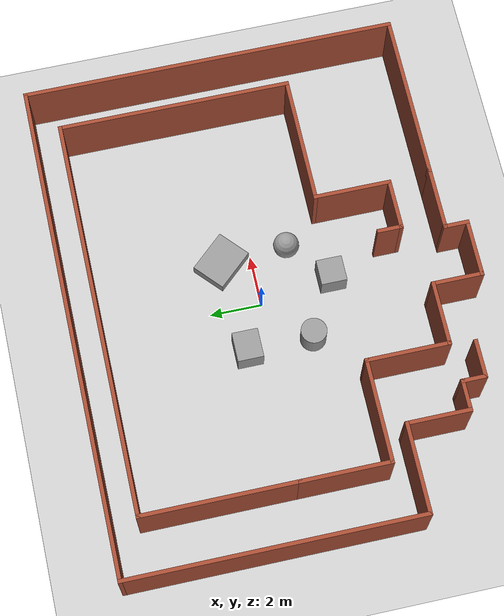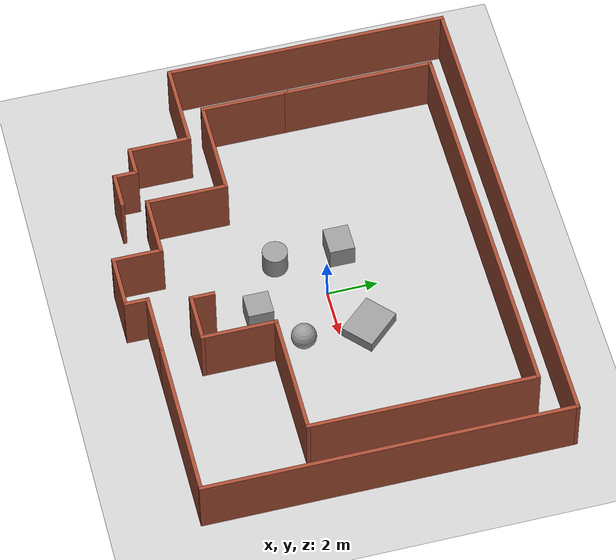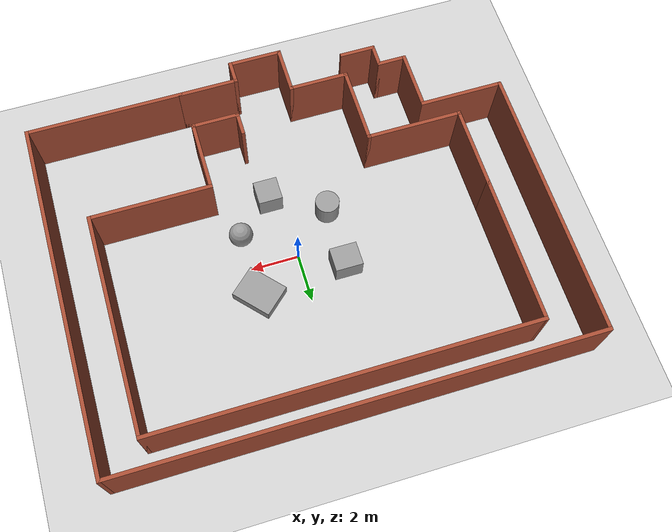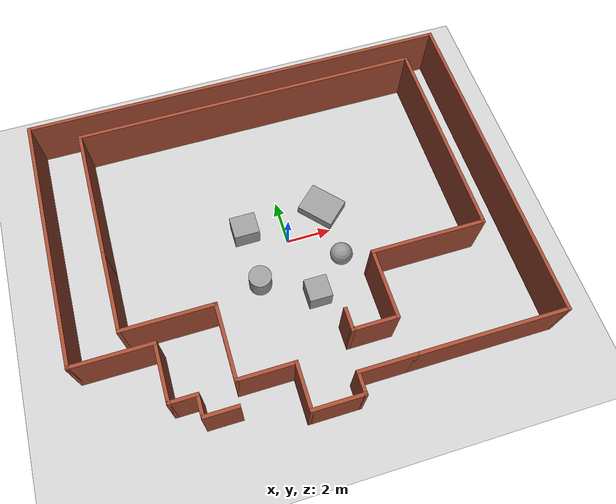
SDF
<sdf version="1.7">
 <world name="default">
  <light name="sun" type="directional">
   <pose>0 0 10 0 -0 0</pose>
   <diffuse>0.8 0.8 0.8 1</diffuse>
   <specular>0.2 0.2 0.2 1</specular>
   <attenuation>
    <range>1000</range>
    <constant>0.9</constant>
    <linear>0.01</linear>
    <quadratic>0.001</quadratic>
   </attenuation>
   <direction>-0.5 0.1 -0.9</direction>
   <spot><inner_angle>0</inner_angle><outer_angle>0</outer_angle><falloff>0</falloff></spot>
  </light>
  <model name="ground_plane">
   <static>1</static>
   <link name="link">
    <collision name="collision">
     <geometry><plane><normal>0 0 1</normal><size>100 100</size></plane></geometry>
     <surface>
      <contact><collide_bitmask>65535</collide_bitmask></contact>
      <friction><ode><mu>100</mu><mu2>50</mu2></ode></friction>
     </surface>
    </collision>
    <visual name="visual">
     <cast_shadows>0</cast_shadows>
     <geometry><plane><normal>0 0 1</normal><size>100 100</size></plane></geometry>
     <material>
      <script><uri>file://media/materials/scripts/gazebo.material</uri><name>Gazebo/Grey</name></script>
     </material>
    </visual>
   </link>
  </model>
  <gravity>0 0 -9.8</gravity>
  <magnetic_field>6e-06 2.3e-05 -4.2e-05</magnetic_field>
  <atmosphere type="adiabatic"/>
  <physics type="ode">
   <max_step_size>0.001</max_step_size>
   <real_time_factor>1</real_time_factor>
   <real_time_update_rate>1000</real_time_update_rate>
  </physics>
  <scene><ambient>0.4 0.4 0.4 1</ambient><background>0.7 0.7 0.7 1</background><shadows>1</shadows></scene>
  <spherical_coordinates>
   <surface_model>EARTH_WGS84</surface_model>
   <latitude_deg>0</latitude_deg>
   <longitude_deg>0</longitude_deg>
   <elevation>0</elevation>
   <heading_deg>0</heading_deg>
  </spherical_coordinates>
  <model name="Untitled">
   <pose>-0.285121 -0.377202 0.458181 0 -0 0</pose>
   <link name="Wall_0">
    <collision name="Wall_0_Collision">
     <geometry><box><size>3.5 0.15 2.5</size></box></geometry>
     <pose>0 0 1.25 0 -0 0</pose>
    </collision>
    <visual name="Wall_0_Visual">
     <pose>0 0 1.25 0 -0 0</pose>
     <geometry><box><size>3.5 0.15 2.5</size></box></geometry>
     <material>
      <script><uri>file://media/materials/scripts/gazebo.material</uri><name>Gazebo/Bricks</name></script>
      <ambient>1 1 1 1</ambient>
     </material>
     <meta><layer>0</layer></meta>
    </visual>
    <pose>-7.45 -0.975 0 0 -0 -1.5708</pose>
   </link>
   <link name="Wall_10">
    <collision name="Wall_10_Collision">
     <geometry><box><size>15.5 0.15 2.5</size></box></geometry>
     <pose>0 0 1.25 0 -0 0</pose>
    </collision>
    <visual name="Wall_10_Visual">
     <pose>0 0 1.25 0 -0 0</pose>
     <geometry><box><size>15.5 0.15 2.5</size></box></geometry>
     <material>
      <script><uri>file://media/materials/scripts/gazebo.material</uri><name>Gazebo/Bricks</name></script>
      <ambient>1 1 1 1</ambient>
     </material>
     <meta><layer>0</layer></meta>
    </visual>
    <pose>0.225 6.55 0 0 -0 0</pose>
   </link>
   <link name="Wall_11">
    <collision name="Wall_11_Collision">
     <geometry><box><size>9 0.15 2.5</size></box></geometry>
     <pose>0 0 1.25 0 -0 0</pose>
    </collision>
    <visual name="Wall_11_Visual">
     <pose>0 0 1.25 0 -0 0</pose>
     <geometry><box><size>9 0.15 2.5</size></box></geometry>
     <material>
      <script><uri>file://media/materials/scripts/gazebo.material</uri><name>Gazebo/Bricks</name></script>
      <ambient>1 1 1 1</ambient>
     </material>
     <meta><layer>0</layer></meta>
    </visual>
    <pose>7.9 2.125 0 0 -0 -1.5708</pose>
   </link>
   <link name="Wall_12">
    <collision name="Wall_12_Collision">
     <geometry><box><size>5 0.15 2.5</size></box></geometry>
     <pose>0 0 1.25 0 -0 0</pose>
    </collision>
    <visual name="Wall_12_Visual">
     <pose>0 0 1.25 0 -0 0</pose>
     <geometry><box><size>5 0.15 2.5</size></box></geometry>
     <material>
      <script><uri>file://media/materials/scripts/gazebo.material</uri><name>Gazebo/Bricks</name></script>
      <ambient>1 1 1 1</ambient>
     </material>
     <meta><layer>0</layer></meta>
    </visual>
    <pose>5.475 -2.3 0 0 -0 3.14159</pose>
   </link>
   <link name="Wall_13">
    <collision name="Wall_13_Collision">
     <geometry><box><size>3 0.15 2.5</size></box></geometry>
     <pose>0 0 1.25 0 -0 0</pose>
    </collision>
    <visual name="Wall_13_Visual">
     <pose>0 0 1.25 0 -0 0</pose>
     <geometry><box><size>3 0.15 2.5</size></box></geometry>
     <material>
      <script><uri>file://media/materials/scripts/gazebo.material</uri><name>Gazebo/Bricks</name></script>
      <ambient>1 1 1 1</ambient>
     </material>
     <meta><layer>0</layer></meta>
    </visual>
    <pose>3.05 -3.725 0 0 -0 -1.5708</pose>
   </link>
   <link name="Wall_14">
    <collision name="Wall_14_Collision">
     <geometry><box><size>2 0.15 2.5</size></box></geometry>
     <pose>0 0 1.25 0 -0 0</pose>
    </collision>
    <visual name="Wall_14_Visual">
     <pose>0 0 1.25 0 -0 0</pose>
     <geometry><box><size>2 0.15 2.5</size></box></geometry>
     <material>
      <script><uri>file://media/materials/scripts/gazebo.material</uri><name>Gazebo/Bricks</name></script>
      <ambient>1 1 1 1</ambient>
     </material>
     <meta><layer>0</layer></meta>
    </visual>
    <pose>2.125 -5.15 0 0 -0 3.14159</pose>
   </link>
   <link name="Wall_15">
    <collision name="Wall_15_Collision">
     <geometry><box><size>1 0.15 2.5</size></box></geometry>
     <pose>0 0 1.25 0 -0 0</pose>
    </collision>
    <visual name="Wall_15_Visual">
     <pose>0 0 1.25 0 -0 0</pose>
     <geometry><box><size>1 0.15 2.5</size></box></geometry>
     <material>
      <script><uri>file://media/materials/scripts/gazebo.material</uri><name>Gazebo/Bricks</name></script>
      <ambient>1 1 1 1</ambient>
     </material>
     <meta><layer>0</layer></meta>
    </visual>
    <pose>1.2 -4.725 0 0 -0 1.5708</pose>
   </link>
   <link name="Wall_17">
    <collision name="Wall_17_Collision">
     <geometry><box><size>4 0.15 2.5</size></box></geometry>
     <pose>0 0 1.25 0 -0 0</pose>
    </collision>
    <visual name="Wall_17_Visual">
     <pose>0 0 1.25 0 -0 0</pose>
     <geometry><box><size>4 0.15 2.5</size></box></geometry>
     <material>
      <script><uri>file://media/materials/scripts/gazebo.material</uri><name>Gazebo/Bricks</name></script>
      <ambient>1 1 1 1</ambient>
     </material>
     <meta><layer>0</layer></meta>
    </visual>
    <pose>-5.525 -2.65 0 0 -0 0</pose>
   </link>
   <link name="Wall_18">
    <collision name="Wall_18_Collision">
     <geometry><box><size>3.25 0.15 2.5</size></box></geometry>
     <pose>0 0 1.25 0 -0 0</pose>
    </collision>
    <visual name="Wall_18_Visual">
     <pose>0 0 1.25 0 -0 0</pose>
     <geometry><box><size>3.25 0.15 2.5</size></box></geometry>
     <material>
      <script><uri>file://media/materials/scripts/gazebo.material</uri><name>Gazebo/Bricks</name></script>
      <ambient>1 1 1 1</ambient>
     </material>
     <meta><layer>0</layer></meta>
    </visual>
    <pose>-3.6 -4.2 0 0 -0 -1.5708</pose>
   </link>
   <link name="Wall_19">
    <collision name="Wall_19_Collision">
     <geometry><box><size>2.5 0.15 2.5</size></box></geometry>
     <pose>0 0 1.25 0 -0 0</pose>
    </collision>
    <visual name="Wall_19_Visual">
     <pose>0 0 1.25 0 -0 0</pose>
     <geometry><box><size>2.5 0.15 2.5</size></box></geometry>
     <material>
      <script><uri>file://media/materials/scripts/gazebo.material</uri><name>Gazebo/Bricks</name></script>
      <ambient>1 1 1 1</ambient>
     </material>
     <meta><layer>0</layer></meta>
    </visual>
    <pose>-2.425 -5.75 0 0 -0 0</pose>
   </link>
   <link name="Wall_20">
    <collision name="Wall_20_Collision">
     <geometry><box><size>2 0.15 2.5</size></box></geometry>
     <pose>0 0 1.25 0 -0 0</pose>
    </collision>
    <visual name="Wall_20_Visual">
     <pose>0 0 1.25 0 -0 0</pose>
     <geometry><box><size>2 0.15 2.5</size></box></geometry>
     <material>
      <script><uri>file://media/materials/scripts/gazebo.material</uri><name>Gazebo/Bricks</name></script>
      <ambient>1 1 1 1</ambient>
     </material>
     <meta><layer>0</layer></meta>
    </visual>
    <pose>-1.25 -6.675 0 0 -0 -1.5708</pose>
   </link>
   <link name="Wall_21">
    <collision name="Wall_21_Collision">
     <geometry><box><size>2.25 0.15 2.5</size></box></geometry>
     <pose>0 0 1.25 0 -0 0</pose>
    </collision>
    <visual name="Wall_21_Visual">
     <pose>0 0 1.25 0 -0 0</pose>
     <geometry><box><size>2.25 0.15 2.5</size></box></geometry>
     <material>
      <script><uri>file://media/materials/scripts/gazebo.material</uri><name>Gazebo/Bricks</name></script>
      <ambient>1 1 1 1</ambient>
     </material>
     <meta><layer>0</layer></meta>
    </visual>
    <pose>-0.2 -7.6 0 0 -0 0</pose>
   </link>
   <link name="Wall_22">
    <collision name="Wall_22_Collision">
     <geometry><box><size>1 0.15 2.5</size></box></geometry>
     <pose>0 0 1.25 0 -0 0</pose>
    </collision>
    <visual name="Wall_22_Visual">
     <pose>0 0 1.25 0 -0 0</pose>
     <geometry><box><size>1 0.15 2.5</size></box></geometry>
     <material>
      <script><uri>file://media/materials/scripts/gazebo.material</uri><name>Gazebo/Bricks</name></script>
      <ambient>1 1 1 1</ambient>
     </material>
     <meta><layer>0</layer></meta>
    </visual>
    <pose>0.85 -7.175 0 0 -0 1.5708</pose>
   </link>
   <link name="Wall_23">
    <collision name="Wall_23_Collision">
     <geometry><box><size>2.5 0.15 2.5</size></box></geometry>
     <pose>0 0 1.25 0 -0 0</pose>
    </collision>
    <visual name="Wall_23_Visual">
     <pose>0 0 1.25 0 -0 0</pose>
     <geometry><box><size>2.5 0.15 2.5</size></box></geometry>
     <material>
      <script><uri>file://media/materials/scripts/gazebo.material</uri><name>Gazebo/Bricks</name></script>
      <ambient>1 1 1 1</ambient>
     </material>
     <meta><layer>0</layer></meta>
    </visual>
    <pose>2.025 -6.75 0 0 -0 0</pose>
   </link>
   <link name="Wall_24">
    <collision name="Wall_24_Collision">
     <geometry><box><size>6.5 0.15 2.5</size></box></geometry>
     <pose>0 0 1.25 0 -0 0</pose>
    </collision>
    <visual name="Wall_24_Visual">
     <pose>0 0 1.25 0 -0 0</pose>
     <geometry><box><size>6.5 0.15 2.5</size></box></geometry>
     <material>
      <script><uri>file://media/materials/scripts/gazebo.material</uri><name>Gazebo/Bricks</name></script>
      <ambient>1 1 1 1</ambient>
     </material>
     <meta><layer>0</layer></meta>
    </visual>
    <pose>6.375 -6.75 0 0 -0 0</pose>
   </link>
   <link name="Wall_25">
    <collision name="Wall_25_Collision">
     <geometry><box><size>14.5 0.15 2.5</size></box></geometry>
     <pose>0 0 1.25 0 -0 0</pose>
    </collision>
    <visual name="Wall_25_Visual">
     <pose>0 0 1.25 0 -0 0</pose>
     <geometry><box><size>14.5 0.15 2.5</size></box></geometry>
     <material>
      <script><uri>file://media/materials/scripts/gazebo.material</uri><name>Gazebo/Bricks</name></script>
      <ambient>1 1 1 1</ambient>
     </material>
     <meta><layer>0</layer></meta>
    </visual>
    <pose>9.55 0.424999 0 0 -0 1.5708</pose>
   </link>
   <link name="Wall_26">
    <collision name="Wall_26_Collision">
     <geometry><box><size>19.25 0.15 2.5</size></box></geometry>
     <pose>0 0 1.25 0 -0 0</pose>
    </collision>
    <visual name="Wall_26_Visual">
     <pose>0 0 1.25 0 -0 0</pose>
     <geometry><box><size>19.25 0.15 2.5</size></box></geometry>
     <material>
      <script><uri>file://media/materials/scripts/gazebo.material</uri><name>Gazebo/Bricks</name></script>
      <ambient>1 1 1 1</ambient>
     </material>
     <meta><layer>0</layer></meta>
    </visual>
    <pose>0 7.6 0 0 -0 3.14159</pose>
   </link>
   <link name="Wall_27">
    <collision name="Wall_27_Collision">
     <geometry><box><size>11.25 0.15 2.5</size></box></geometry>
     <pose>0 0 1.25 0 -0 0</pose>
    </collision>
    <visual name="Wall_27_Visual">
     <pose>0 0 1.25 0 -0 0</pose>
     <geometry><box><size>11.25 0.15 2.5</size></box></geometry>
     <material>
      <script><uri>file://media/materials/scripts/gazebo.material</uri><name>Gazebo/Bricks</name></script>
      <ambient>1 1 1 1</ambient>
     </material>
     <meta><layer>0</layer></meta>
    </visual>
    <pose>-9.55 2.05 0 0 -0 -1.5708</pose>
   </link>
   <link name="Wall_28">
    <collision name="Wall_28_Collision">
     <geometry><box><size>3.5 0.15 2.5</size></box></geometry>
     <pose>0 0 1.25 0 -0 0</pose>
    </collision>
    <visual name="Wall_28_Visual">
     <pose>0 0 1.25 0 -0 0</pose>
     <geometry><box><size>3.5 0.15 2.5</size></box></geometry>
     <material>
      <script><uri>file://media/materials/scripts/gazebo.material</uri><name>Gazebo/Bricks</name></script>
      <ambient>1 1 1 1</ambient>
     </material>
     <meta><layer>0</layer></meta>
    </visual>
    <pose>-7.875 -3.5 0 0 -0 0</pose>
   </link>
   <link name="Wall_29">
    <collision name="Wall_29_Collision">
     <geometry><box><size>2.5 0.15 2.5</size></box></geometry>
     <pose>0 0 1.25 0 -0 0</pose>
    </collision>
    <visual name="Wall_29_Visual">
     <pose>0 0 1.25 0 -0 0</pose>
     <geometry><box><size>2.5 0.15 2.5</size></box></geometry>
     <material>
      <script><uri>file://media/materials/scripts/gazebo.material</uri><name>Gazebo/Bricks</name></script>
      <ambient>1 1 1 1</ambient>
     </material>
     <meta><layer>0</layer></meta>
    </visual>
    <pose>-6.2 -4.675 0 0 -0 -1.5708</pose>
   </link>
   <link name="Wall_30">
    <collision name="Wall_30_Collision">
     <geometry><box><size>1.25 0.15 2.5</size></box></geometry>
     <pose>0 0 1.25 0 -0 0</pose>
    </collision>
    <visual name="Wall_30_Visual">
     <pose>0 0 1.25 0 -0 0</pose>
     <geometry><box><size>1.25 0.15 2.5</size></box></geometry>
     <material>
      <script><uri>file://media/materials/scripts/gazebo.material</uri><name>Gazebo/Bricks</name></script>
      <ambient>1 1 1 1</ambient>
     </material>
     <meta><layer>0</layer></meta>
    </visual>
    <pose>-5.65 -5.85 0 0 -0 0</pose>
   </link>
   <link name="Wall_31">
    <collision name="Wall_31_Collision">
     <geometry><box><size>1 0.15 2.5</size></box></geometry>
     <pose>0 0 1.25 0 -0 0</pose>
    </collision>
    <visual name="Wall_31_Visual">
     <pose>0 0 1.25 0 -0 0</pose>
     <geometry><box><size>1 0.15 2.5</size></box></geometry>
     <material>
      <script><uri>file://media/materials/scripts/gazebo.material</uri><name>Gazebo/Bricks</name></script>
      <ambient>1 1 1 1</ambient>
     </material>
     <meta><layer>0</layer></meta>
    </visual>
    <pose>-5.1 -6.275 0 0 -0 -1.5708</pose>
   </link>
   <link name="Wall_32">
    <collision name="Wall_32_Collision">
     <geometry><box><size>1.5 0.15 2.5</size></box></geometry>
     <pose>0 0 1.25 0 -0 0</pose>
    </collision>
    <visual name="Wall_32_Visual">
     <pose>0 0 1.25 0 -0 0</pose>
     <geometry><box><size>1.5 0.15 2.5</size></box></geometry>
     <material>
      <script><uri>file://media/materials/scripts/gazebo.material</uri><name>Gazebo/Bricks</name></script>
      <ambient>1 1 1 1</ambient>
     </material>
     <meta><layer>0</layer></meta>
    </visual>
    <pose>-4.425 -6.7 0 0 -0 0</pose>
   </link>
   <link name="Wall_9">
    <collision name="Wall_9_Collision">
     <geometry><box><size>6 0.15 2.5</size></box></geometry>
     <pose>0 0 1.25 0 -0 0</pose>
    </collision>
    <visual name="Wall_9_Visual">
     <pose>0 0 1.25 0 -0 0</pose>
     <geometry><box><size>6 0.15 2.5</size></box></geometry>
     <material>
      <script><uri>file://media/materials/scripts/gazebo.material</uri><name>Gazebo/Bricks</name></script>
      <ambient>1 1 1 1</ambient>
     </material>
     <meta><layer>0</layer></meta>
    </visual>
    <pose>-7.45 3.625 0 0 -0 1.5708</pose>
   </link>
   <static>1</static>
  </model>
  <model name="unit_box">
   <pose>0.476629 -2.84401 0.499995 0 1e-05 0</pose>
   <link name="link">
    <inertial>
     <mass>1</mass>
     <inertia>
      <ixx>0.166667</ixx>
      <ixy>0</ixy>
      <ixz>0</ixz>
      <iyy>0.166667</iyy>
      <iyz>0</iyz>
      <izz>0.166667</izz>
     </inertia>
    </inertial>
    <collision name="collision"><geometry><box><size>1 1 1</size></box></geometry></collision>
    <visual name="visual">
     <geometry><box><size>1 1 1</size></box></geometry>
     <material>
      <script><name>Gazebo/Grey</name><uri>file://media/materials/scripts/gazebo.material</uri></script>
     </material>
    </visual>
   </link>
  </model>
  <model name="unit_cylinder">
   <pose>-1.7488 -1.63929 0.499997 3e-06 4e-06 -0</pose>
   <link name="link">
    <inertial>
     <mass>1</mass>
     <inertia><ixx>0.145833</ixx><ixy>0</ixy><ixz>0</ixz><iyy>0.145833</iyy><iyz>0</iyz><izz>0.125</izz></inertia>
    </inertial>
    <collision name="collision">
     <geometry><cylinder><radius>0.5</radius><length>1</length></cylinder></geometry>
    </collision>
    <visual name="visual">
     <geometry><cylinder><radius>0.5</radius><length>1</length></cylinder></geometry>
     <material>
      <script><name>Gazebo/Grey</name><uri>file://media/materials/scripts/gazebo.material</uri></script>
     </material>
    </visual>
   </link>
  </model>
  <model name="unit_sphere">
   <pose>2.03315 -1.4339 0.5 0 -0 0</pose>
   <link name="link">
    <inertial>
     <mass>1</mass>
     <inertia><ixx>0.1</ixx><ixy>0</ixy><ixz>0</ixz><iyy>0.1</iyy><iyz>0</iyz><izz>0.1</izz></inertia>
    </inertial>
    <collision name="collision"><geometry><sphere><radius>0.5</radius></sphere></geometry></collision>
    <visual name="visual">
     <geometry><sphere><radius>0.5</radius></sphere></geometry>
     <material>
      <script><name>Gazebo/Grey</name><uri>file://media/materials/scripts/gazebo.material</uri></script>
     </material>
    </visual>
   </link>
  </model>
  <model name="unit_box_0">
   <pose>1.9647 1.1516 0.238815 0 -0 0.737013</pose>
   <link name="link">
    <inertial>
     <mass>1</mass>
     <inertia>
      <ixx>0.166667</ixx>
      <ixy>0</ixy>
      <ixz>0</ixz>
      <iyy>0.166667</iyy>
      <iyz>0</iyz>
      <izz>0.166667</izz>
     </inertia>
    </inertial>
    <collision name="collision"><geometry><box><size>1.37299 1.71829 0.477631</size></box></geometry></collision>
    <visual name="visual">
     <geometry><box><size>1.37299 1.71829 0.477631</size></box></geometry>
     <material>
      <script><name>Gazebo/Grey</name><uri>file://media/materials/scripts/gazebo.material</uri></script>
     </material>
    </visual>
   </link>
  </model>
  <model name="unit_box_1">
   <pose>-1.75249 0.915443 0.484683 0 0 -0.000398</pose>
   <link name="link">
    <inertial>
     <mass>1</mass>
     <inertia>
      <ixx>0.166667</ixx>
      <ixy>0</ixy>
      <ixz>0</ixz>
      <iyy>0.166667</iyy>
      <iyz>0</iyz>
      <izz>0.166667</izz>
     </inertia>
    </inertial>
    <collision name="collision"><geometry><box><size>1.14184 1 0.969362</size></box></geometry></collision>
    <visual name="visual">
     <geometry><box><size>1.14184 1 0.969362</size></box></geometry>
     <material>
      <script><name>Gazebo/Grey</name><uri>file://media/materials/scripts/gazebo.material</uri></script>
     </material>
    </visual>
   </link>
  </model>
 </world>
</sdf>
